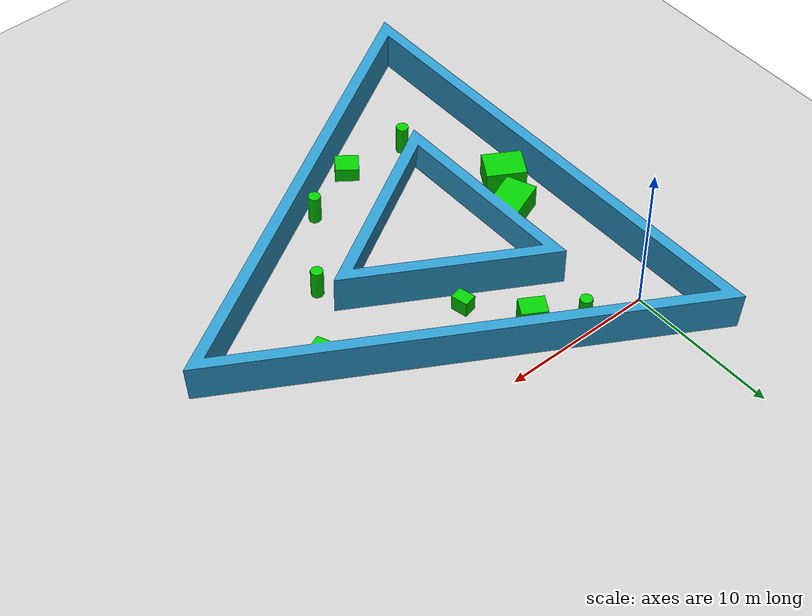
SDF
<?xml version="1.0"?>
<sdf version="1.4">
  <world name="default">
    <include>
      <uri>model://ground_plane</uri>
    </include>
    <include>
      <uri>model://sun</uri>
    </include>
      <include>
      <uri>model://arena_task4</uri>
      <pose>0.0 0 -0.1 0 0 0</pose>
    </include>
  </world>
</sdf>

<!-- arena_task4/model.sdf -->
<sdf version="1.6">
  <model name="arena_task4">
    <pose>0 0 0  0 0 0</pose>
    <static>true</static>
    <link name="link">
      <collision name="colision3">
        <geometry>
          <mesh>
            <uri>model://arena_task4/meshes/Final_Map3.dae</uri>
            <scale>1 1 1</scale>
          </mesh>
        </geometry>
      </collision>

      <visual name="visual3">
        <cast_shadows>true</cast_shadows>
        <geometry>
          <mesh>
            <uri>model://arena_task4/meshes/Final_Map3.dae</uri>
            <scale>1 1 1</scale>
          </mesh>
        </geometry>
      </visual>

    </link>
  </model>
</sdf>
